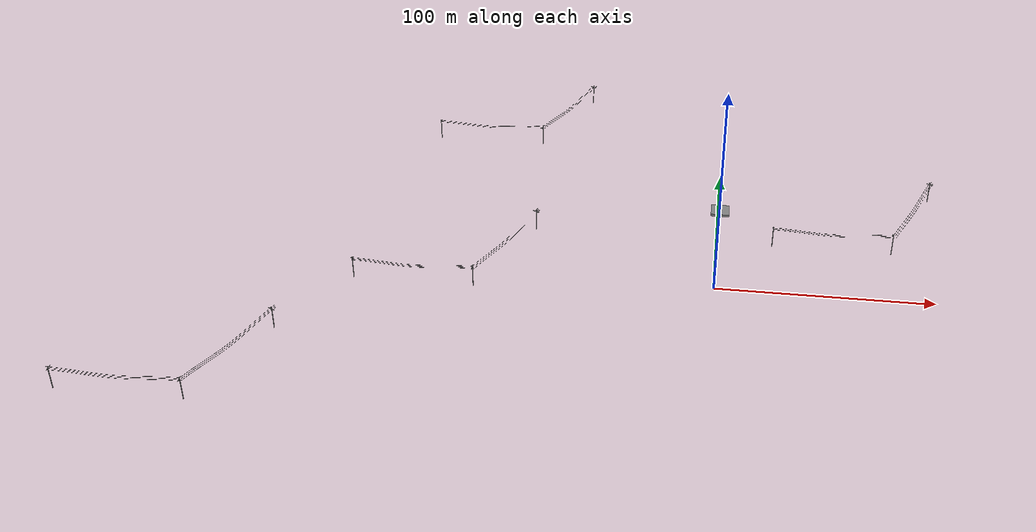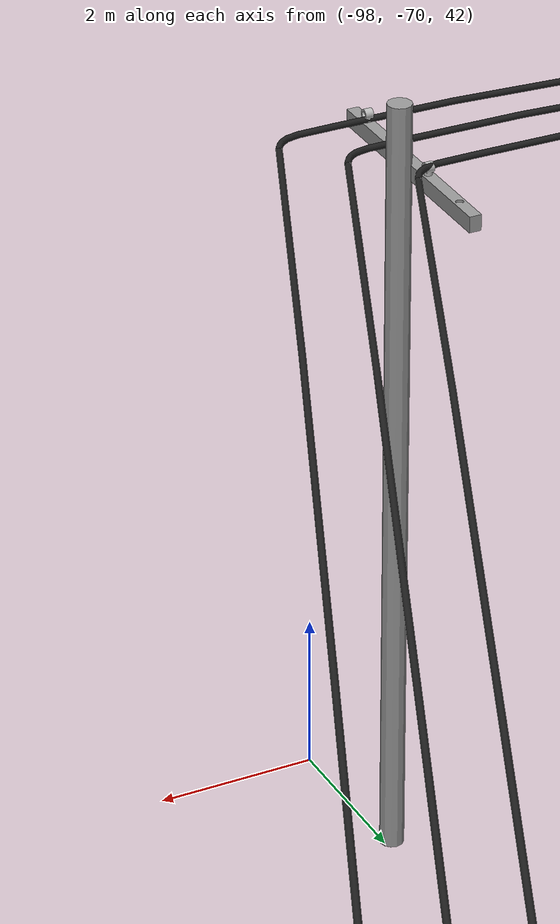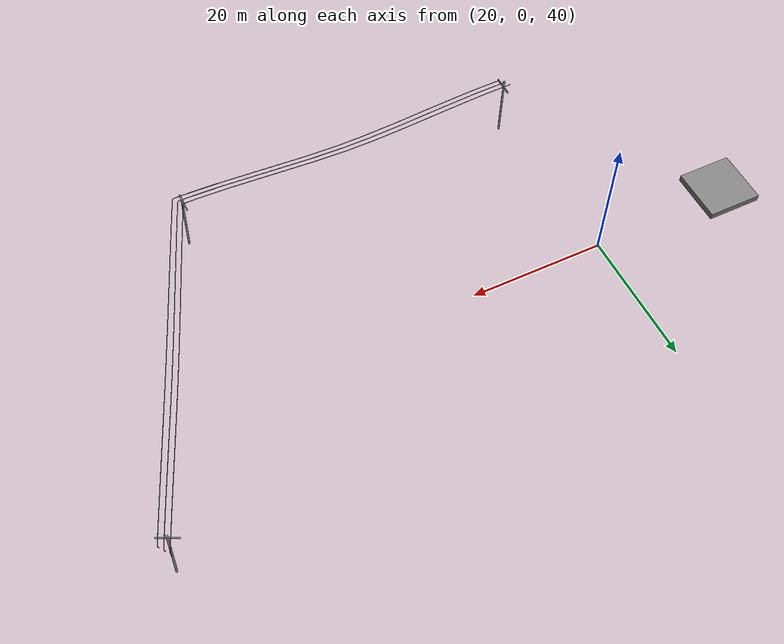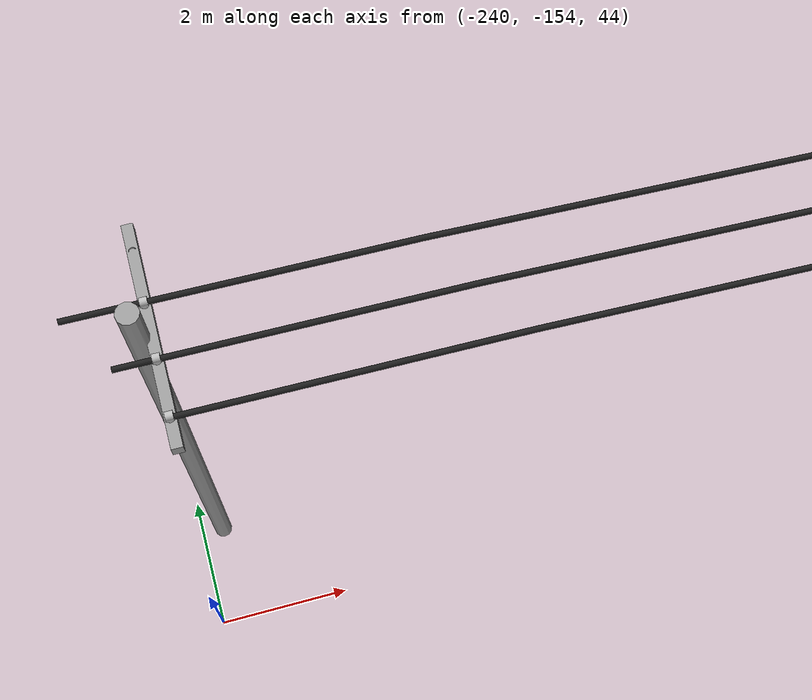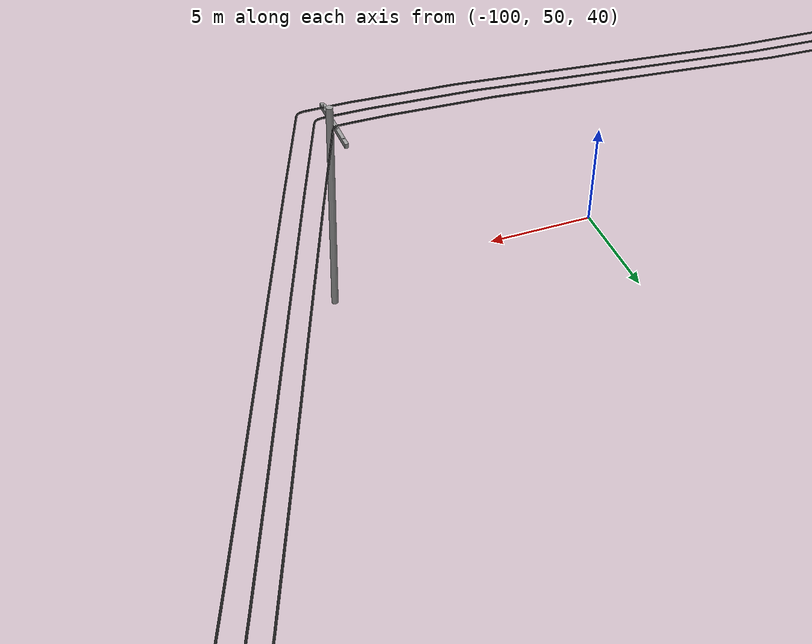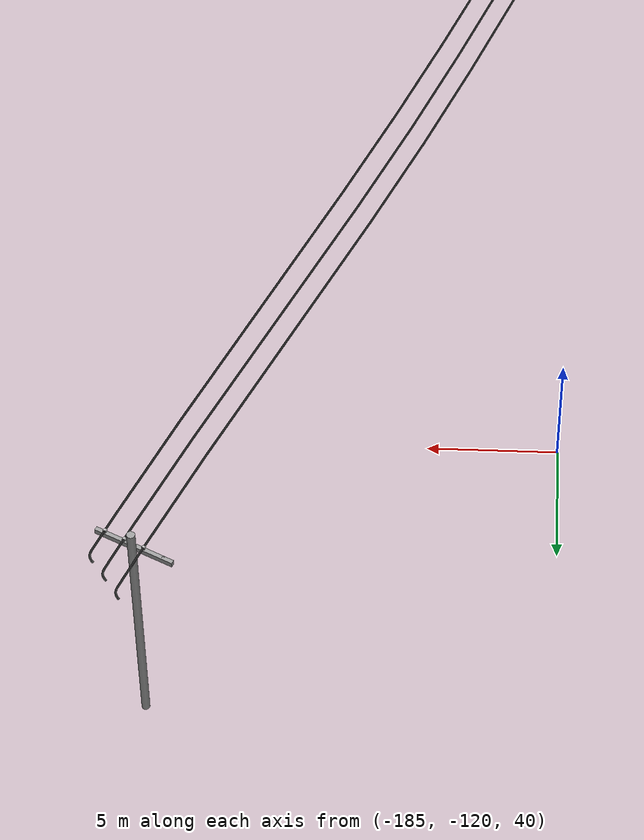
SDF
<sdf version="1.6">
 <world name="desert_windfarm">
  <include><uri>model://sun</uri></include>
  <include>
   <uri>model://TL</uri>
   <name>tower_0</name>
   <pose>-148.4 -68.8 41.4 0 0 0</pose>
   <scale>3.0 3.0 3.0</scale>
  </include>
  <include>
   <uri>model://TL</uri>
   <name>tower_1</name>
   <pose>22.6 -24.6 41.4 0 0 0</pose>
   <scale>3.0 3.0 3.0</scale>
  </include>
  <include>
   <uri>model://TL</uri>
   <name>tower_2</name>
   <pose>-239.8 -151.8 41.6 0 0 0</pose>
   <scale>3.0 3.0 3.0</scale>
  </include>
  <include>
   <uri>model://TL</uri>
   <name>tower_3</name>
   <pose>-136.4 52.5 41.0 0 0 0</pose>
   <scale>3.0 3.0 3.0</scale>
  </include>
  <model name="base_station">
   <static>true</static>
   <pose>0 0 41.8 0 0 0</pose>
   <link name="platform">
    <visual name="platform_vis">
     <pose>0 0 0.5 0 0 0</pose>
     <geometry><box><size>8 8 1.0</size></box></geometry>
     <material><ambient>0.4 0.4 0.4 1</ambient><diffuse>0.5 0.5 0.5 1</diffuse></material>
    </visual>
    <collision name="platform_col">
     <pose>0 0 0.5 0 0 0</pose>
     <geometry><box><size>8 8 1.0</size></box></geometry>
    </collision>
   </link>
  </model>
  <physics name="default_physics" default="0" type="ode">
   <gravity>0 0 -9.8066</gravity>
   <ode>
    <solver><type>quick</type><iters>10</iters><sor>1.3</sor></solver>
    <constraints>
     <cfm>0</cfm>
     <erp>0.2</erp>
     <contact_max_correcting_vel>100</contact_max_correcting_vel>
     <contact_surface_layer>0.001</contact_surface_layer>
    </constraints>
   </ode>
   <max_step_size>0.004</max_step_size>
   <real_time_factor>1.0</real_time_factor>
   <real_time_update_rate>250</real_time_update_rate>
  </physics>
  <plugin name="wind_plugin" filename="libgazebo_wind_plugin.so">
   <frame_id>world</frame_id>
   <wind_direction>1 0 0</wind_direction>
   <wind_force_mean>5.0</wind_force_mean>
   <wind_force_variance>2.0</wind_force_variance>
   <wind_gust_start>5</wind_gust_start>
   <wind_gust_duration>3</wind_gust_duration>
   <wind_gust_velocity_factor>1.5</wind_gust_velocity_factor>
  </plugin>
 </world>
</sdf>

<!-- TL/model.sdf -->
<sdf version='1.6'>
  <model name='TL'>
    <static>true</static>
    <link name='base_link'>
      <pose frame=''>0 0 0 0 -0 0</pose>
      <inertial>
        <pose frame=''>40.9647 13.6761 6.69126 0 -0 0</pose>
        <mass>3933.3</mass>
        <inertia>
          <ixx>1.49087e+06</ixx>
          <ixy>-1.32744e+06</ixy>
          <ixz>-8733.41</ixz>
          <iyy>2.75396e+06</iyy>
          <iyz>10945.9</iyz>
          <izz>4.18172e+06</izz>
        </inertia>
      </inertial>
      <collision name='base_link_collision'>
        <pose frame=''>0 0 0 0 -0 0</pose>
        <geometry>
          <mesh>
            <scale>1 1 1</scale>
            <uri>model://TL/meshes/base_link.STL</uri>
          </mesh>
        </geometry>
      </collision>
      <collision name='base_link_fixed_joint_lump__barra1_collision_1'>
        <pose frame=''>0 0 0 0 -0 0</pose>
        <geometry>
          <mesh>
            <scale>1 1 1</scale>
            <uri>model://TL/meshes/barra1.STL</uri>
          </mesh>
        </geometry>
      </collision>
      <collision name='base_link_fixed_joint_lump__barra2_collision_2'>
        <pose frame=''>0 0 0 0 -0 0</pose>
        <geometry>
          <mesh>
            <scale>1 1 1</scale>
            <uri>model://TL/meshes/barra2.STL</uri>
          </mesh>
        </geometry>
      </collision>
      <collision name='base_link_fixed_joint_lump__barra3_collision_3'>
        <pose frame=''>0 0 0 0 -0 0</pose>
        <geometry>
          <mesh>
            <scale>1 1 1</scale>
            <uri>model://TL/meshes/barra3.STL</uri>
          </mesh>
        </geometry>
      </collision>
      <collision name='base_link_fixed_joint_lump__cabo1_collision_4'>
        <pose frame=''>0 0 0 0 -0 0</pose>
        <geometry>
          <mesh>
            <scale>1 1 1</scale>
            <uri>model://TL/meshes/cabo1.STL</uri>
          </mesh>
        </geometry>
      </collision>
      <collision name='base_link_fixed_joint_lump__cabo2_collision_5'>
        <pose frame=''>0 0 0 0 -0 0</pose>
        <geometry>
          <mesh>
            <scale>1 1 1</scale>
            <uri>model://TL/meshes/cabo2.STL</uri>
          </mesh>
        </geometry>
      </collision>
      <collision name='base_link_fixed_joint_lump__cabo3_collision_6'>
        <pose frame=''>0 0 0 0 -0 0</pose>
        <geometry>
          <mesh>
            <scale>1 1 1</scale>
            <uri>model://TL/meshes/cabo3.STL</uri>
          </mesh>
        </geometry>
      </collision>
      <collision name='base_link_fixed_joint_lump__cabo4_collision_7'>
        <pose frame=''>0 0 0 0 -0 0</pose>
        <geometry>
          <mesh>
            <scale>1 1 1</scale>
            <uri>model://TL/meshes/cabo4.STL</uri>
          </mesh>
        </geometry>
      </collision>
      <collision name='base_link_fixed_joint_lump__cabo5_collision_8'>
        <pose frame=''>0 0 0 0 -0 0</pose>
        <geometry>
          <mesh>
            <scale>1 1 1</scale>
            <uri>model://TL/meshes/cabo5.STL</uri>
          </mesh>
        </geometry>
      </collision>
      <collision name='base_link_fixed_joint_lump__cabo6_collision_9'>
        <pose frame=''>0 0 0 0 -0 0</pose>
        <geometry>
          <mesh>
            <scale>1 1 1</scale>
            <uri>model://TL/meshes/cabo6.STL</uri>
          </mesh>
        </geometry>
      </collision>
      <collision name='base_link_fixed_joint_lump__poste2_collision_10'>
        <pose frame=''>0 0 0 0 -0 0</pose>
        <geometry>
          <mesh>
            <scale>1 1 1</scale>
            <uri>model://TL/meshes/poste2.STL</uri>
          </mesh>
        </geometry>
      </collision>
      <collision name='base_link_fixed_joint_lump__poste3_collision_11'>
        <pose frame=''>0 0 0 0 -0 0</pose>
        <geometry>
          <mesh>
            <scale>1 1 1</scale>
            <uri>model://TL/meshes/poste3.STL</uri>
          </mesh>
        </geometry>
      </collision>
      <collision name='base_link_fixed_joint_lump__suporte1_collision_12'>
        <pose frame=''>0 0 0 0 -0 0</pose>
        <geometry>
          <mesh>
            <scale>1 1 1</scale>
            <uri>model://TL/meshes/suporte1.STL</uri>
          </mesh>
        </geometry>
      </collision>
      <collision name='base_link_fixed_joint_lump__suporte2_collision_13'>
        <pose frame=''>0 0 0 0 -0 0</pose>
        <geometry>
          <mesh>
            <scale>1 1 1</scale>
            <uri>model://TL/meshes/suporte2.STL</uri>
          </mesh>
        </geometry>
      </collision>
      <collision name='base_link_fixed_joint_lump__suporte3_collision_14'>
        <pose frame=''>0 0 0 0 -0 0</pose>
        <geometry>
          <mesh>
            <scale>1 1 1</scale>
            <uri>model://TL/meshes/suporte3.STL</uri>
          </mesh>
        </geometry>
      </collision>
      <collision name='base_link_fixed_joint_lump__suporte4_collision_15'>
        <pose frame=''>0 0 0 0 -0 0</pose>
        <geometry>
          <mesh>
            <scale>1 1 1</scale>
            <uri>model://TL/meshes/suporte4.STL</uri>
          </mesh>
        </geometry>
      </collision>
      <collision name='base_link_fixed_joint_lump__suporte5_collision_16'>
        <pose frame=''>0 0 0 0 -0 0</pose>
        <geometry>
          <mesh>
            <scale>1 1 1</scale>
            <uri>model://TL/meshes/suporte5.STL</uri>
          </mesh>
        </geometry>
      </collision>
      <collision name='base_link_fixed_joint_lump__suporte6_collision_17'>
        <pose frame=''>0 0 0 0 -0 0</pose>
        <geometry>
          <mesh>
            <scale>1 1 1</scale>
            <uri>model://TL/meshes/suporte6.STL</uri>
          </mesh>
        </geometry>
      </collision>
      <collision name='base_link_fixed_joint_lump__suporte7_collision_18'>
        <pose frame=''>0 0 0 0 -0 0</pose>
        <geometry>
          <mesh>
            <scale>1 1 1</scale>
            <uri>model://TL/meshes/suporte7.STL</uri>
          </mesh>
        </geometry>
      </collision>
      <collision name='base_link_fixed_joint_lump__suporte8_collision_19'>
        <pose frame=''>0 0 0 0 -0 0</pose>
        <geometry>
          <mesh>
            <scale>1 1 1</scale>
            <uri>model://TL/meshes/suporte8.STL</uri>
          </mesh>
        </geometry>
      </collision>
      <collision name='base_link_fixed_joint_lump__suporte9_collision_20'>
        <pose frame=''>0 0 0 0 -0 0</pose>
        <geometry>
          <mesh>
            <scale>1 1 1</scale>
            <uri>model://TL/meshes/suporte9.STL</uri>
          </mesh>
        </geometry>
      </collision>
      <visual name='base_link_visual'>
        <pose frame=''>0 0 0 0 -0 0</pose>
        <geometry>
          <mesh>
            <scale>1 1 1</scale>
            <uri>model://TL/meshes/base_link.STL</uri>
          </mesh>
        </geometry>
        <material>
          <script>
            <uri>file://media/materials/scripts/gazebo.material</uri>
            <name>Gazebo/Grey</name>
          </script>
        </material>
      </visual>
      <visual name='base_link_fixed_joint_lump__barra1_visual_1'>
        <pose frame=''>0 0 0 0 -0 0</pose>
        <geometry>
          <mesh>
            <scale>1 1 1</scale>
            <uri>model://TL/meshes/barra1.STL</uri>
          </mesh>
        </geometry>
        <material>
          <script>
            <uri>file://media/materials/scripts/gazebo.material</uri>
            <name>Gazebo/Grey</name>
          </script>
        </material>
      </visual>
      <visual name='base_link_fixed_joint_lump__barra2_visual_2'>
        <pose frame=''>0 0 0 0 -0 0</pose>
        <geometry>
          <mesh>
            <scale>1 1 1</scale>
            <uri>model://TL/meshes/barra2.STL</uri>
          </mesh>
        </geometry>
        <material>
          <script>
            <uri>file://media/materials/scripts/gazebo.material</uri>
            <name>Gazebo/Grey</name>
          </script>
        </material>
      </visual>
      <visual name='base_link_fixed_joint_lump__barra3_visual_3'>
        <pose frame=''>0 0 0 0 -0 0</pose>
        <geometry>
          <mesh>
            <scale>1 1 1</scale>
            <uri>model://TL/meshes/barra3.STL</uri>
          </mesh>
        </geometry>
        <material>
          <script>
            <uri>file://media/materials/scripts/gazebo.material</uri>
            <name>Gazebo/Grey</name>
          </script>
        </material>
      </visual>
      <visual name='base_link_fixed_joint_lump__cabo1_visual_4'>
        <pose frame=''>0 0 0 0 -0 0</pose>
        <geometry>
          <mesh>
            <scale>1 1 1</scale>
            <uri>model://TL/meshes/cabo1.STL</uri>
          </mesh>
        </geometry>
        <material>
          <script>
            <uri>file://media/materials/scripts/gazebo.material</uri>
            <name>Gazebo/Black</name>
          </script>
        </material>
      </visual>
      <visual name='base_link_fixed_joint_lump__cabo2_visual_5'>
        <pose frame=''>0 0 0 0 -0 0</pose>
        <geometry>
          <mesh>
            <scale>1 1 1</scale>
            <uri>model://TL/meshes/cabo2.STL</uri>
          </mesh>
        </geometry>
        <material>
          <script>
            <uri>file://media/materials/scripts/gazebo.material</uri>
            <name>Gazebo/Black</name>
          </script>
        </material>
      </visual>
      <visual name='base_link_fixed_joint_lump__cabo3_visual_6'>
        <pose frame=''>0 0 0 0 -0 0</pose>
        <geometry>
          <mesh>
            <scale>1 1 1</scale>
            <uri>model://TL/meshes/cabo3.STL</uri>
          </mesh>
        </geometry>
        <material>
          <script>
            <uri>file://media/materials/scripts/gazebo.material</uri>
            <name>Gazebo/Black</name>
          </script>
        </material>
      </visual>
      <visual name='base_link_fixed_joint_lump__cabo4_visual_7'>
        <pose frame=''>0 0 0 0 -0 0</pose>
        <geometry>
          <mesh>
            <scale>1 1 1</scale>
            <uri>model://TL/meshes/cabo4.STL</uri>
          </mesh>
        </geometry>
        <material>
          <script>
            <uri>file://media/materials/scripts/gazebo.material</uri>
            <name>Gazebo/Black</name>
          </script>
        </material>
      </visual>
      <visual name='base_link_fixed_joint_lump__cabo5_visual_8'>
        <pose frame=''>0 0 0 0 -0 0</pose>
        <geometry>
          <mesh>
            <scale>1 1 1</scale>
            <uri>model://TL/meshes/cabo5.STL</uri>
          </mesh>
        </geometry>
        <material>
          <script>
            <uri>file://media/materials/scripts/gazebo.material</uri>
            <name>Gazebo/Black</name>
          </script>
        </material>
      </visual>
      <visual name='base_link_fixed_joint_lump__cabo6_visual_9'>
        <pose frame=''>0 0 0 0 -0 0</pose>
        <geometry>
          <mesh>
            <scale>1 1 1</scale>
            <uri>model://TL/meshes/cabo6.STL</uri>
          </mesh>
        </geometry>
        <material>
          <script>
            <uri>file://media/materials/scripts/gazebo.material</uri>
            <name>Gazebo/Black</name>
          </script>
        </material>
      </visual>
      <visual name='base_link_fixed_joint_lump__poste2_visual_10'>
        <pose frame=''>0 0 0 0 -0 0</pose>
        <geometry>
          <mesh>
            <scale>1 1 1</scale>
            <uri>model://TL/meshes/poste2.STL</uri>
          </mesh>
        </geometry>
        <material>
          <script>
            <uri>file://media/materials/scripts/gazebo.material</uri>
            <name>Gazebo/Grey</name>
          </script>
        </material>
      </visual>
      <visual name='base_link_fixed_joint_lump__poste3_visual_11'>
        <pose frame=''>0 0 0 0 -0 0</pose>
        <geometry>
          <mesh>
            <scale>1 1 1</scale>
            <uri>model://TL/meshes/poste3.STL</uri>
          </mesh>
        </geometry>
        <material>
          <script>
            <uri>file://media/materials/scripts/gazebo.material</uri>
            <name>Gazebo/Grey</name>
          </script>
        </material>
      </visual>
      <visual name='base_link_fixed_joint_lump__suporte1_visual_12'>
        <pose frame=''>0 0 0 0 -0 0</pose>
        <geometry>
          <mesh>
            <scale>1 1 1</scale>
            <uri>model://TL/meshes/suporte1.STL</uri>
          </mesh>
        </geometry>
      </visual>
      <visual name='base_link_fixed_joint_lump__suporte2_visual_13'>
        <pose frame=''>0 0 0 0 -0 0</pose>
        <geometry>
          <mesh>
            <scale>1 1 1</scale>
            <uri>model://TL/meshes/suporte2.STL</uri>
          </mesh>
        </geometry>
      </visual>
      <visual name='base_link_fixed_joint_lump__suporte3_visual_14'>
        <pose frame=''>0 0 0 0 -0 0</pose>
        <geometry>
          <mesh>
            <scale>1 1 1</scale>
            <uri>model://TL/meshes/suporte3.STL</uri>
          </mesh>
        </geometry>
      </visual>
      <visual name='base_link_fixed_joint_lump__suporte4_visual_15'>
        <pose frame=''>0 0 0 0 -0 0</pose>
        <geometry>
          <mesh>
            <scale>1 1 1</scale>
            <uri>model://TL/meshes/suporte4.STL</uri>
          </mesh>
        </geometry>
      </visual>
      <visual name='base_link_fixed_joint_lump__suporte5_visual_16'>
        <pose frame=''>0 0 0 0 -0 0</pose>
        <geometry>
          <mesh>
            <scale>1 1 1</scale>
            <uri>model://TL/meshes/suporte5.STL</uri>
          </mesh>
        </geometry>
      </visual>
      <visual name='base_link_fixed_joint_lump__suporte6_visual_17'>
        <pose frame=''>0 0 0 0 -0 0</pose>
        <geometry>
          <mesh>
            <scale>1 1 1</scale>
            <uri>model://TL/meshes/suporte6.STL</uri>
          </mesh>
        </geometry>
      </visual>
      <visual name='base_link_fixed_joint_lump__suporte7_visual_18'>
        <pose frame=''>0 0 0 0 -0 0</pose>
        <geometry>
          <mesh>
            <scale>1 1 1</scale>
            <uri>model://TL/meshes/suporte7.STL</uri>
          </mesh>
        </geometry>
      </visual>
      <visual name='base_link_fixed_joint_lump__suporte8_visual_19'>
        <pose frame=''>0 0 0 0 -0 0</pose>
        <geometry>
          <mesh>
            <scale>1 1 1</scale>
            <uri>model://TL/meshes/suporte8.STL</uri>
          </mesh>
        </geometry>
      </visual>
      <visual name='base_link_fixed_joint_lump__suporte9_visual_20'>
        <pose frame=''>0 0 0 0 -0 0</pose>
        <geometry>
          <mesh>
            <scale>1 1 1</scale>
            <uri>model://TL/meshes/suporte9.STL</uri>
          </mesh>
        </geometry>
      </visual>
    </link>
  </model>
</sdf>
